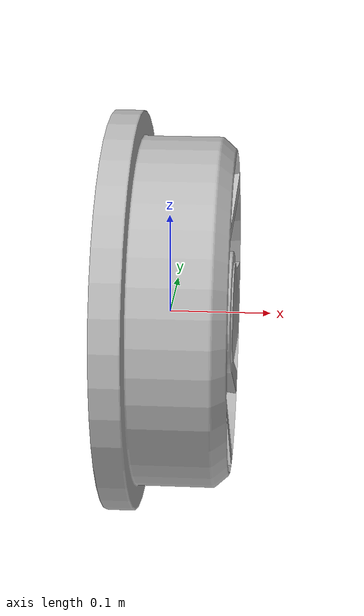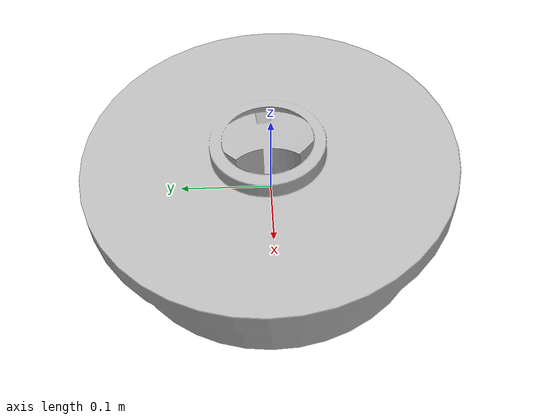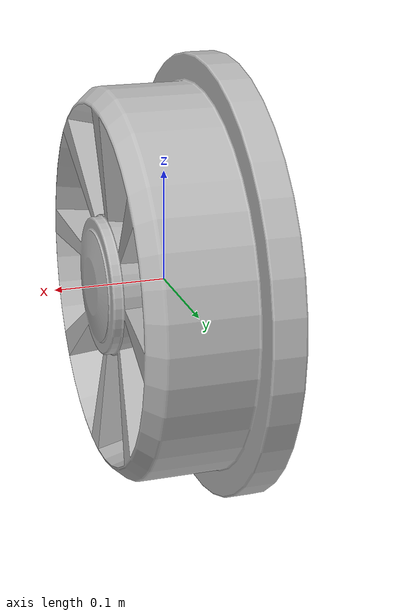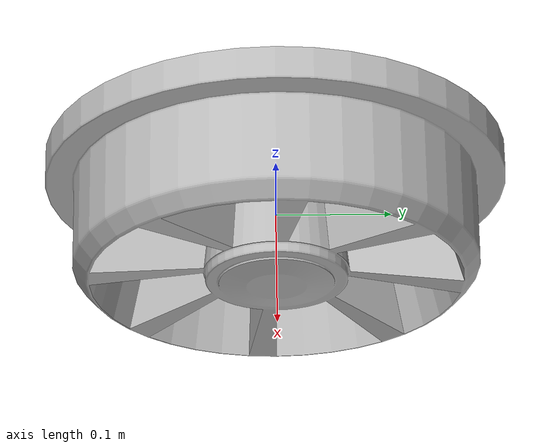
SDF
<?xml version="1.0" ?>
<sdf version="1.6">
  <model name="amp_wheel">
    <static>false</static>
    <link name="link">
      <visual name="visual">
        <geometry>
          <mesh>
            <uri>model://amp_wheel/amp_wheel.obj</uri>
            <scale>1 1 1</scale>
          </mesh>
        </geometry>
      </visual>
      <collision name="collision">
        <geometry>
          <mesh>
            <uri>model://amp_wheel/amp_wheel.obj</uri>
          </mesh>
        </geometry>
      </collision>
    </link>
  </model>
</sdf>
